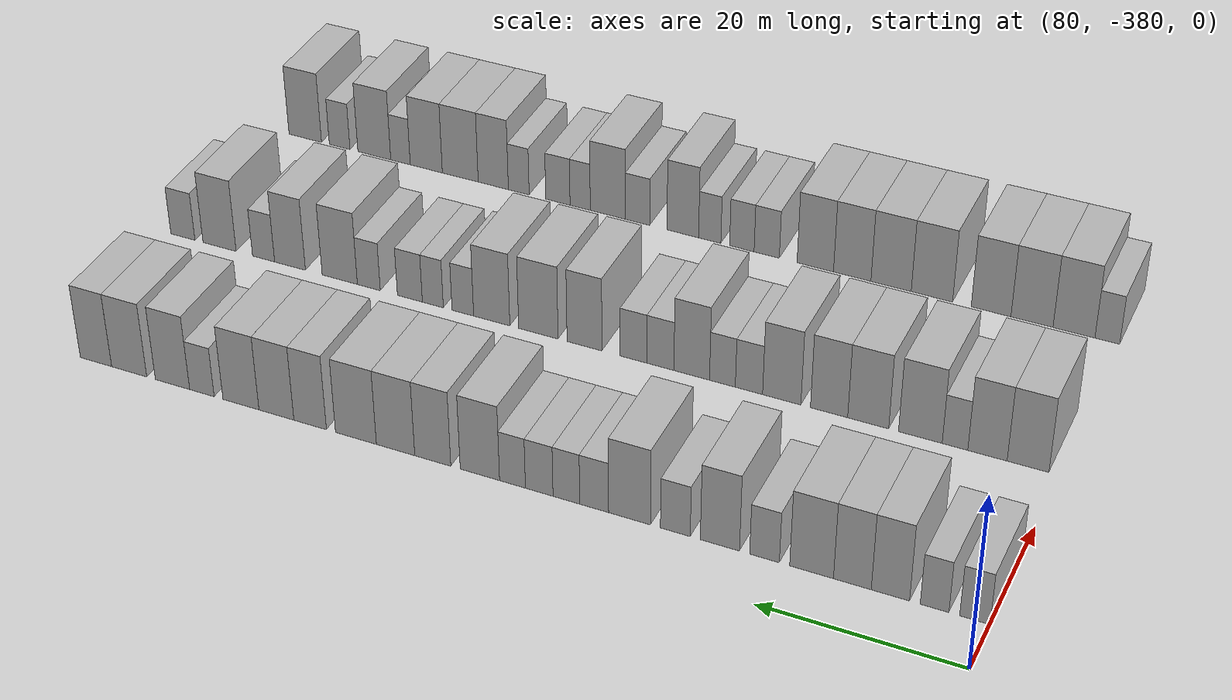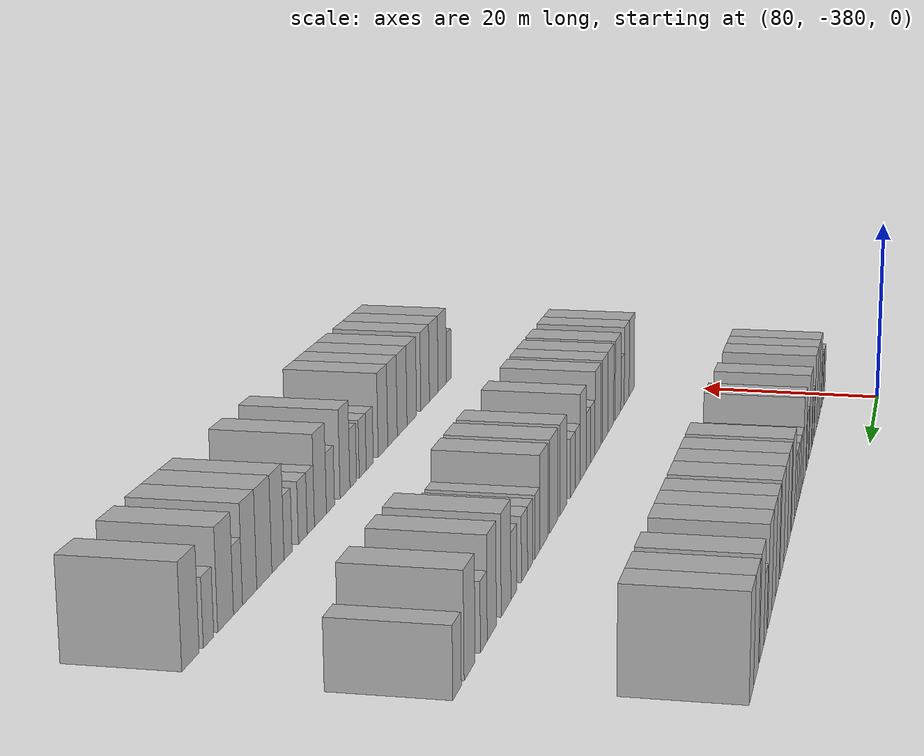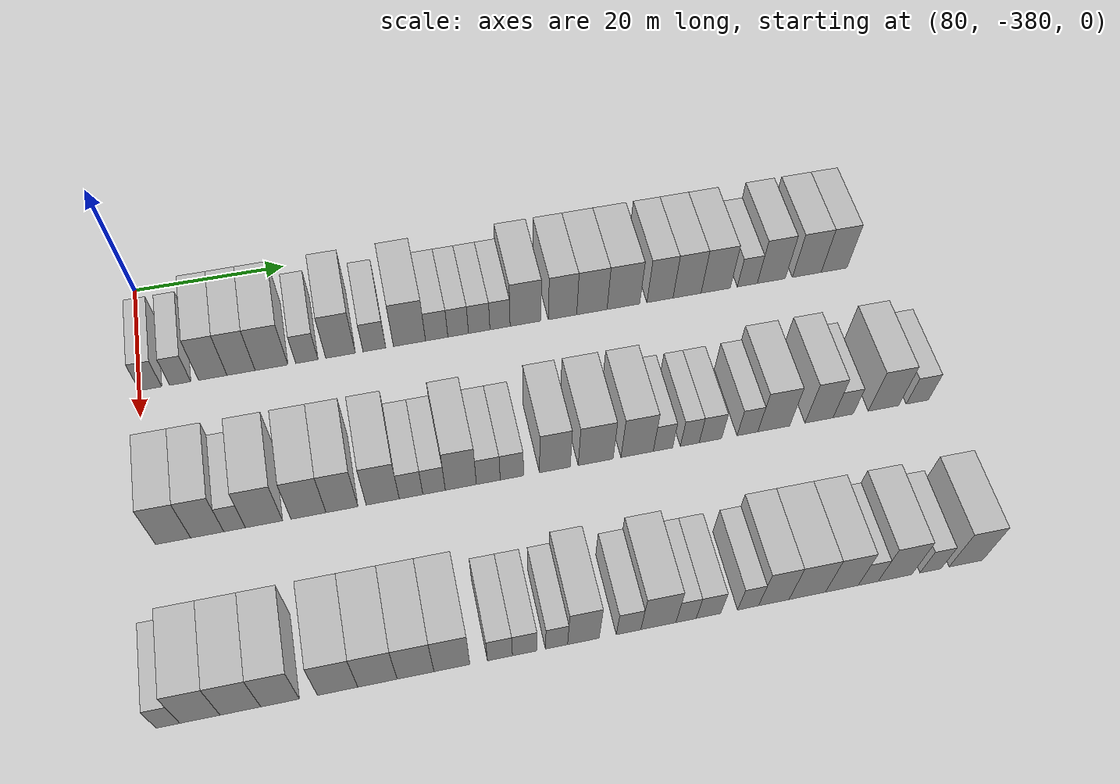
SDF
<sdf version="1.6">
 <world name="default">
  <model name="building_581">
   <static>1</static>
   <pose>91.0000 -378.5980 0 0.000000 0.000000 0.000000</pose>
   <link name="link">
    <pose>0 0 3.00 0 0 0</pose>
    <collision name="collision"><geometry><box><size>10.0000 2.8041 6.0000</size></box></geometry></collision>
    <visual name="visual">
     <cast_shadows>0</cast_shadows>
     <geometry><box><size>10.0000 2.8041 6.0000</size></box></geometry>
     <material>
      <script>
       <uri>model://HANNAS_wall/materials/scripts</uri>
       <uri>model://HANNAS_wall/materials/textures</uri>
       <name>vrc/HANNAS_wall</name>
      </script>
     </material>
    </visual>
   </link>
  </model>
  <model name="building_582">
   <static>1</static>
   <pose>91.0000 -374.8581 0 0.000000 0.000000 0.000000</pose>
   <link name="link">
    <pose>0 0 3.00 0 0 0</pose>
    <collision name="collision"><geometry><box><size>10.0000 2.6757 6.0000</size></box></geometry></collision>
    <visual name="visual">
     <cast_shadows>0</cast_shadows>
     <geometry><box><size>10.0000 2.6757 6.0000</size></box></geometry>
     <material>
      <script>
       <uri>model://HANNAS_wall/materials/scripts</uri>
       <uri>model://HANNAS_wall/materials/textures</uri>
       <name>vrc/HANNAS_wall</name>
      </script>
     </material>
    </visual>
   </link>
  </model>
  <model name="building_583">
   <static>1</static>
   <pose>91.0000 -370.7126 0 0.000000 0.000000 0.000000</pose>
   <link name="link">
    <pose>0 0 4.50 0 0 0</pose>
    <collision name="collision"><geometry><box><size>10.0000 3.6153 9.0000</size></box></geometry></collision>
    <visual name="visual">
     <cast_shadows>0</cast_shadows>
     <geometry><box><size>10.0000 3.6153 9.0000</size></box></geometry>
     <material>
      <script>
       <uri>model://HANNAS_wall/materials/scripts</uri>
       <uri>model://HANNAS_wall/materials/textures</uri>
       <name>vrc/HANNAS_wall</name>
      </script>
     </material>
    </visual>
   </link>
  </model>
  <model name="building_584">
   <static>1</static>
   <pose>91.0000 -367.1024 0 0.000000 0.000000 0.000000</pose>
   <link name="link">
    <pose>0 0 4.50 0 0 0</pose>
    <collision name="collision"><geometry><box><size>10.0000 3.6051 9.0000</size></box></geometry></collision>
    <visual name="visual">
     <cast_shadows>0</cast_shadows>
     <geometry><box><size>10.0000 3.6051 9.0000</size></box></geometry>
     <material>
      <script>
       <uri>model://HANNAS_wall/materials/scripts</uri>
       <uri>model://HANNAS_wall/materials/textures</uri>
       <name>vrc/HANNAS_wall</name>
      </script>
     </material>
    </visual>
   </link>
  </model>
  <model name="building_585">
   <static>1</static>
   <pose>91.0000 -363.1893 0 0.000000 0.000000 0.000000</pose>
   <link name="link">
    <pose>0 0 4.50 0 0 0</pose>
    <collision name="collision"><geometry><box><size>10.0000 4.2212 9.0000</size></box></geometry></collision>
    <visual name="visual">
     <cast_shadows>0</cast_shadows>
     <geometry><box><size>10.0000 4.2212 9.0000</size></box></geometry>
     <material>
      <script>
       <uri>model://HANNAS_wall/materials/scripts</uri>
       <uri>model://HANNAS_wall/materials/textures</uri>
       <name>vrc/HANNAS_wall</name>
      </script>
     </material>
    </visual>
   </link>
  </model>
  <model name="building_586">
   <static>1</static>
   <pose>91.0000 -358.6298 0 0.000000 0.000000 0.000000</pose>
   <link name="link">
    <pose>0 0 3.00 0 0 0</pose>
    <collision name="collision"><geometry><box><size>10.0000 2.8978 6.0000</size></box></geometry></collision>
    <visual name="visual">
     <cast_shadows>0</cast_shadows>
     <geometry><box><size>10.0000 2.8978 6.0000</size></box></geometry>
     <material>
      <script>
       <uri>model://HANNAS_wall/materials/scripts</uri>
       <uri>model://HANNAS_wall/materials/textures</uri>
       <name>vrc/HANNAS_wall</name>
      </script>
     </material>
    </visual>
   </link>
  </model>
  <model name="building_587">
   <static>1</static>
   <pose>91.0000 -354.2464 0 0.000000 0.000000 0.000000</pose>
   <link name="link">
    <pose>0 0 4.50 0 0 0</pose>
    <collision name="collision"><geometry><box><size>10.0000 3.8690 9.0000</size></box></geometry></collision>
    <visual name="visual">
     <cast_shadows>0</cast_shadows>
     <geometry><box><size>10.0000 3.8690 9.0000</size></box></geometry>
     <material>
      <script>
       <uri>model://HANNAS_wall/materials/scripts</uri>
       <uri>model://HANNAS_wall/materials/textures</uri>
       <name>vrc/HANNAS_wall</name>
      </script>
     </material>
    </visual>
   </link>
  </model>
  <model name="building_588">
   <static>1</static>
   <pose>91.0000 -349.8208 0 0.000000 0.000000 0.000000</pose>
   <link name="link">
    <pose>0 0 3.00 0 0 0</pose>
    <collision name="collision"><geometry><box><size>10.0000 2.9821 6.0000</size></box></geometry></collision>
    <visual name="visual">
     <cast_shadows>0</cast_shadows>
     <geometry><box><size>10.0000 2.9821 6.0000</size></box></geometry>
     <material>
      <script>
       <uri>model://HANNAS_wall/materials/scripts</uri>
       <uri>model://HANNAS_wall/materials/textures</uri>
       <name>vrc/HANNAS_wall</name>
      </script>
     </material>
    </visual>
   </link>
  </model>
  <model name="building_589">
   <static>1</static>
   <pose>91.0000 -345.2131 0 0.000000 0.000000 0.000000</pose>
   <link name="link">
    <pose>0 0 4.50 0 0 0</pose>
    <collision name="collision"><geometry><box><size>10.0000 4.2333 9.0000</size></box></geometry></collision>
    <visual name="visual">
     <cast_shadows>0</cast_shadows>
     <geometry><box><size>10.0000 4.2333 9.0000</size></box></geometry>
     <material>
      <script>
       <uri>model://HANNAS_wall/materials/scripts</uri>
       <uri>model://HANNAS_wall/materials/textures</uri>
       <name>vrc/HANNAS_wall</name>
      </script>
     </material>
    </visual>
   </link>
  </model>
  <model name="building_590">
   <static>1</static>
   <pose>91.0000 -341.6178 0 0.000000 0.000000 0.000000</pose>
   <link name="link">
    <pose>0 0 3.00 0 0 0</pose>
    <collision name="collision"><geometry><box><size>10.0000 2.9574 6.0000</size></box></geometry></collision>
    <visual name="visual">
     <cast_shadows>0</cast_shadows>
     <geometry><box><size>10.0000 2.9574 6.0000</size></box></geometry>
     <material>
      <script>
       <uri>model://HANNAS_wall/materials/scripts</uri>
       <uri>model://HANNAS_wall/materials/textures</uri>
       <name>vrc/HANNAS_wall</name>
      </script>
     </material>
    </visual>
   </link>
  </model>
  <model name="building_591">
   <static>1</static>
   <pose>91.0000 -338.7669 0 0.000000 0.000000 0.000000</pose>
   <link name="link">
    <pose>0 0 3.00 0 0 0</pose>
    <collision name="collision"><geometry><box><size>10.0000 2.7444 6.0000</size></box></geometry></collision>
    <visual name="visual">
     <cast_shadows>0</cast_shadows>
     <geometry><box><size>10.0000 2.7444 6.0000</size></box></geometry>
     <material>
      <script>
       <uri>model://HANNAS_wall/materials/scripts</uri>
       <uri>model://HANNAS_wall/materials/textures</uri>
       <name>vrc/HANNAS_wall</name>
      </script>
     </material>
    </visual>
   </link>
  </model>
  <model name="building_592">
   <static>1</static>
   <pose>91.0000 -335.9628 0 0.000000 0.000000 0.000000</pose>
   <link name="link">
    <pose>0 0 3.00 0 0 0</pose>
    <collision name="collision"><geometry><box><size>10.0000 2.8638 6.0000</size></box></geometry></collision>
    <visual name="visual">
     <cast_shadows>0</cast_shadows>
     <geometry><box><size>10.0000 2.8638 6.0000</size></box></geometry>
     <material>
      <script>
       <uri>model://HANNAS_wall/materials/scripts</uri>
       <uri>model://HANNAS_wall/materials/textures</uri>
       <name>vrc/HANNAS_wall</name>
      </script>
     </material>
    </visual>
   </link>
  </model>
  <model name="building_593">
   <static>1</static>
   <pose>91.0000 -333.1796 0 0.000000 0.000000 0.000000</pose>
   <link name="link">
    <pose>0 0 3.00 0 0 0</pose>
    <collision name="collision"><geometry><box><size>10.0000 2.7027 6.0000</size></box></geometry></collision>
    <visual name="visual">
     <cast_shadows>0</cast_shadows>
     <geometry><box><size>10.0000 2.7027 6.0000</size></box></geometry>
     <material>
      <script>
       <uri>model://HANNAS_wall/materials/scripts</uri>
       <uri>model://HANNAS_wall/materials/textures</uri>
       <name>vrc/HANNAS_wall</name>
      </script>
     </material>
    </visual>
   </link>
  </model>
  <model name="building_594">
   <static>1</static>
   <pose>91.0000 -329.7532 0 0.000000 0.000000 0.000000</pose>
   <link name="link">
    <pose>0 0 4.50 0 0 0</pose>
    <collision name="collision"><geometry><box><size>10.0000 4.1500 9.0000</size></box></geometry></collision>
    <visual name="visual">
     <cast_shadows>0</cast_shadows>
     <geometry><box><size>10.0000 4.1500 9.0000</size></box></geometry>
     <material>
      <script>
       <uri>model://HANNAS_wall/materials/scripts</uri>
       <uri>model://HANNAS_wall/materials/textures</uri>
       <name>vrc/HANNAS_wall</name>
      </script>
     </material>
    </visual>
   </link>
  </model>
  <model name="building_595">
   <static>1</static>
   <pose>91.0000 -324.7522 0 0.000000 0.000000 0.000000</pose>
   <link name="link">
    <pose>0 0 4.50 0 0 0</pose>
    <collision name="collision"><geometry><box><size>10.0000 3.8519 9.0000</size></box></geometry></collision>
    <visual name="visual">
     <cast_shadows>0</cast_shadows>
     <geometry><box><size>10.0000 3.8519 9.0000</size></box></geometry>
     <material>
      <script>
       <uri>model://HANNAS_wall/materials/scripts</uri>
       <uri>model://HANNAS_wall/materials/textures</uri>
       <name>vrc/HANNAS_wall</name>
      </script>
     </material>
    </visual>
   </link>
  </model>
  <model name="building_596">
   <static>1</static>
   <pose>91.0000 -320.7543 0 0.000000 0.000000 0.000000</pose>
   <link name="link">
    <pose>0 0 4.50 0 0 0</pose>
    <collision name="collision"><geometry><box><size>10.0000 4.1440 9.0000</size></box></geometry></collision>
    <visual name="visual">
     <cast_shadows>0</cast_shadows>
     <geometry><box><size>10.0000 4.1440 9.0000</size></box></geometry>
     <material>
      <script>
       <uri>model://HANNAS_wall/materials/scripts</uri>
       <uri>model://HANNAS_wall/materials/textures</uri>
       <name>vrc/HANNAS_wall</name>
      </script>
     </material>
    </visual>
   </link>
  </model>
  <model name="building_597">
   <static>1</static>
   <pose>91.0000 -316.4510 0 0.000000 0.000000 0.000000</pose>
   <link name="link">
    <pose>0 0 4.50 0 0 0</pose>
    <collision name="collision"><geometry><box><size>10.0000 4.4625 9.0000</size></box></geometry></collision>
    <visual name="visual">
     <cast_shadows>0</cast_shadows>
     <geometry><box><size>10.0000 4.4625 9.0000</size></box></geometry>
     <material>
      <script>
       <uri>model://HANNAS_wall/materials/scripts</uri>
       <uri>model://HANNAS_wall/materials/textures</uri>
       <name>vrc/HANNAS_wall</name>
      </script>
     </material>
    </visual>
   </link>
  </model>
  <model name="building_598">
   <static>1</static>
   <pose>91.0000 -311.4185 0 0.000000 0.000000 0.000000</pose>
   <link name="link">
    <pose>0 0 4.50 0 0 0</pose>
    <collision name="collision"><geometry><box><size>10.0000 3.6024 9.0000</size></box></geometry></collision>
    <visual name="visual">
     <cast_shadows>0</cast_shadows>
     <geometry><box><size>10.0000 3.6024 9.0000</size></box></geometry>
     <material>
      <script>
       <uri>model://HANNAS_wall/materials/scripts</uri>
       <uri>model://HANNAS_wall/materials/textures</uri>
       <name>vrc/HANNAS_wall</name>
      </script>
     </material>
    </visual>
   </link>
  </model>
  <model name="building_599">
   <static>1</static>
   <pose>91.0000 -307.6672 0 0.000000 0.000000 0.000000</pose>
   <link name="link">
    <pose>0 0 4.50 0 0 0</pose>
    <collision name="collision"><geometry><box><size>10.0000 3.9003 9.0000</size></box></geometry></collision>
    <visual name="visual">
     <cast_shadows>0</cast_shadows>
     <geometry><box><size>10.0000 3.9003 9.0000</size></box></geometry>
     <material>
      <script>
       <uri>model://HANNAS_wall/materials/scripts</uri>
       <uri>model://HANNAS_wall/materials/textures</uri>
       <name>vrc/HANNAS_wall</name>
      </script>
     </material>
    </visual>
   </link>
  </model>
  <model name="building_600">
   <static>1</static>
   <pose>91.0000 -303.6880 0 0.000000 0.000000 0.000000</pose>
   <link name="link">
    <pose>0 0 4.50 0 0 0</pose>
    <collision name="collision"><geometry><box><size>10.0000 4.0580 9.0000</size></box></geometry></collision>
    <visual name="visual">
     <cast_shadows>0</cast_shadows>
     <geometry><box><size>10.0000 4.0580 9.0000</size></box></geometry>
     <material>
      <script>
       <uri>model://HANNAS_wall/materials/scripts</uri>
       <uri>model://HANNAS_wall/materials/textures</uri>
       <name>vrc/HANNAS_wall</name>
      </script>
     </material>
    </visual>
   </link>
  </model>
  <model name="building_601">
   <static>1</static>
   <pose>91.0000 -299.2604 0 0.000000 0.000000 0.000000</pose>
   <link name="link">
    <pose>0 0 3.00 0 0 0</pose>
    <collision name="collision"><geometry><box><size>10.0000 2.7972 6.0000</size></box></geometry></collision>
    <visual name="visual">
     <cast_shadows>0</cast_shadows>
     <geometry><box><size>10.0000 2.7972 6.0000</size></box></geometry>
     <material>
      <script>
       <uri>model://HANNAS_wall/materials/scripts</uri>
       <uri>model://HANNAS_wall/materials/textures</uri>
       <name>vrc/HANNAS_wall</name>
      </script>
     </material>
    </visual>
   </link>
  </model>
  <model name="building_602">
   <static>1</static>
   <pose>91.0000 -295.8884 0 0.000000 0.000000 0.000000</pose>
   <link name="link">
    <pose>0 0 4.50 0 0 0</pose>
    <collision name="collision"><geometry><box><size>10.0000 3.9466 9.0000</size></box></geometry></collision>
    <visual name="visual">
     <cast_shadows>0</cast_shadows>
     <geometry><box><size>10.0000 3.9466 9.0000</size></box></geometry>
     <material>
      <script>
       <uri>model://HANNAS_wall/materials/scripts</uri>
       <uri>model://HANNAS_wall/materials/textures</uri>
       <name>vrc/HANNAS_wall</name>
      </script>
     </material>
    </visual>
   </link>
  </model>
  <model name="building_603">
   <static>1</static>
   <pose>91.0000 -290.8686 0 0.000000 0.000000 0.000000</pose>
   <link name="link">
    <pose>0 0 4.50 0 0 0</pose>
    <collision name="collision"><geometry><box><size>10.0000 4.0931 9.0000</size></box></geometry></collision>
    <visual name="visual">
     <cast_shadows>0</cast_shadows>
     <geometry><box><size>10.0000 4.0931 9.0000</size></box></geometry>
     <material>
      <script>
       <uri>model://HANNAS_wall/materials/scripts</uri>
       <uri>model://HANNAS_wall/materials/textures</uri>
       <name>vrc/HANNAS_wall</name>
      </script>
     </material>
    </visual>
   </link>
  </model>
  <model name="building_604">
   <static>1</static>
   <pose>91.0000 -286.9830 0 0.000000 0.000000 0.000000</pose>
   <link name="link">
    <pose>0 0 4.50 0 0 0</pose>
    <collision name="collision"><geometry><box><size>10.0000 3.6780 9.0000</size></box></geometry></collision>
    <visual name="visual">
     <cast_shadows>0</cast_shadows>
     <geometry><box><size>10.0000 3.6780 9.0000</size></box></geometry>
     <material>
      <script>
       <uri>model://HANNAS_wall/materials/scripts</uri>
       <uri>model://HANNAS_wall/materials/textures</uri>
       <name>vrc/HANNAS_wall</name>
      </script>
     </material>
    </visual>
   </link>
  </model>
  <model name="building_771">
   <static>1</static>
   <pose>113.0000 -376.9429 0 0.000000 0.000000 0.000000</pose>
   <link name="link">
    <pose>0 0 4.50 0 0 0</pose>
    <collision name="collision"><geometry><box><size>10.0000 4.1141 9.0000</size></box></geometry></collision>
    <visual name="visual">
     <cast_shadows>0</cast_shadows>
     <geometry><box><size>10.0000 4.1141 9.0000</size></box></geometry>
     <material>
      <script>
       <uri>model://HANNAS_wall/materials/scripts</uri>
       <uri>model://HANNAS_wall/materials/textures</uri>
       <name>vrc/HANNAS_wall</name>
      </script>
     </material>
    </visual>
   </link>
  </model>
  <model name="building_772">
   <static>1</static>
   <pose>113.0000 -372.9311 0 0.000000 0.000000 0.000000</pose>
   <link name="link">
    <pose>0 0 4.50 0 0 0</pose>
    <collision name="collision"><geometry><box><size>10.0000 3.9096 9.0000</size></box></geometry></collision>
    <visual name="visual">
     <cast_shadows>0</cast_shadows>
     <geometry><box><size>10.0000 3.9096 9.0000</size></box></geometry>
     <material>
      <script>
       <uri>model://HANNAS_wall/materials/scripts</uri>
       <uri>model://HANNAS_wall/materials/textures</uri>
       <name>vrc/HANNAS_wall</name>
      </script>
     </material>
    </visual>
   </link>
  </model>
  <model name="building_773">
   <static>1</static>
   <pose>113.0000 -369.6929 0 0.000000 0.000000 0.000000</pose>
   <link name="link">
    <pose>0 0 3.00 0 0 0</pose>
    <collision name="collision"><geometry><box><size>10.0000 2.5669 6.0000</size></box></geometry></collision>
    <visual name="visual">
     <cast_shadows>0</cast_shadows>
     <geometry><box><size>10.0000 2.5669 6.0000</size></box></geometry>
     <material>
      <script>
       <uri>model://HANNAS_wall/materials/scripts</uri>
       <uri>model://HANNAS_wall/materials/textures</uri>
       <name>vrc/HANNAS_wall</name>
      </script>
     </material>
    </visual>
   </link>
  </model>
  <model name="building_774">
   <static>1</static>
   <pose>113.0000 -366.2006 0 0.000000 0.000000 0.000000</pose>
   <link name="link">
    <pose>0 0 4.50 0 0 0</pose>
    <collision name="collision"><geometry><box><size>10.0000 4.4177 9.0000</size></box></geometry></collision>
    <visual name="visual">
     <cast_shadows>0</cast_shadows>
     <geometry><box><size>10.0000 4.4177 9.0000</size></box></geometry>
     <material>
      <script>
       <uri>model://HANNAS_wall/materials/scripts</uri>
       <uri>model://HANNAS_wall/materials/textures</uri>
       <name>vrc/HANNAS_wall</name>
      </script>
     </material>
    </visual>
   </link>
  </model>
  <model name="building_775">
   <static>1</static>
   <pose>113.0000 -360.8879 0 0.000000 0.000000 0.000000</pose>
   <link name="link">
    <pose>0 0 4.50 0 0 0</pose>
    <collision name="collision"><geometry><box><size>10.0000 4.2077 9.0000</size></box></geometry></collision>
    <visual name="visual">
     <cast_shadows>0</cast_shadows>
     <geometry><box><size>10.0000 4.2077 9.0000</size></box></geometry>
     <material>
      <script>
       <uri>model://HANNAS_wall/materials/scripts</uri>
       <uri>model://HANNAS_wall/materials/textures</uri>
       <name>vrc/HANNAS_wall</name>
      </script>
     </material>
    </visual>
   </link>
  </model>
  <model name="building_776">
   <static>1</static>
   <pose>113.0000 -356.8549 0 0.000000 0.000000 0.000000</pose>
   <link name="link">
    <pose>0 0 4.50 0 0 0</pose>
    <collision name="collision"><geometry><box><size>10.0000 3.8584 9.0000</size></box></geometry></collision>
    <visual name="visual">
     <cast_shadows>0</cast_shadows>
     <geometry><box><size>10.0000 3.8584 9.0000</size></box></geometry>
     <material>
      <script>
       <uri>model://HANNAS_wall/materials/scripts</uri>
       <uri>model://HANNAS_wall/materials/textures</uri>
       <name>vrc/HANNAS_wall</name>
      </script>
     </material>
    </visual>
   </link>
  </model>
  <model name="building_777">
   <static>1</static>
   <pose>113.0000 -351.9163 0 0.000000 0.000000 0.000000</pose>
   <link name="link">
    <pose>0 0 4.50 0 0 0</pose>
    <collision name="collision"><geometry><box><size>10.0000 4.0187 9.0000</size></box></geometry></collision>
    <visual name="visual">
     <cast_shadows>0</cast_shadows>
     <geometry><box><size>10.0000 4.0187 9.0000</size></box></geometry>
     <material>
      <script>
       <uri>model://HANNAS_wall/materials/scripts</uri>
       <uri>model://HANNAS_wall/materials/textures</uri>
       <name>vrc/HANNAS_wall</name>
      </script>
     </material>
    </visual>
   </link>
  </model>
  <model name="building_778">
   <static>1</static>
   <pose>113.0000 -348.4629 0 0.000000 0.000000 0.000000</pose>
   <link name="link">
    <pose>0 0 3.00 0 0 0</pose>
    <collision name="collision"><geometry><box><size>10.0000 2.8881 6.0000</size></box></geometry></collision>
    <visual name="visual">
     <cast_shadows>0</cast_shadows>
     <geometry><box><size>10.0000 2.8881 6.0000</size></box></geometry>
     <material>
      <script>
       <uri>model://HANNAS_wall/materials/scripts</uri>
       <uri>model://HANNAS_wall/materials/textures</uri>
       <name>vrc/HANNAS_wall</name>
      </script>
     </material>
    </visual>
   </link>
  </model>
  <model name="building_779">
   <static>1</static>
   <pose>113.0000 -345.6437 0 0.000000 0.000000 0.000000</pose>
   <link name="link">
    <pose>0 0 3.00 0 0 0</pose>
    <collision name="collision"><geometry><box><size>10.0000 2.7503 6.0000</size></box></geometry></collision>
    <visual name="visual">
     <cast_shadows>0</cast_shadows>
     <geometry><box><size>10.0000 2.7503 6.0000</size></box></geometry>
     <material>
      <script>
       <uri>model://HANNAS_wall/materials/scripts</uri>
       <uri>model://HANNAS_wall/materials/textures</uri>
       <name>vrc/HANNAS_wall</name>
      </script>
     </material>
    </visual>
   </link>
  </model>
  <model name="building_780">
   <static>1</static>
   <pose>113.0000 -342.3522 0 0.000000 0.000000 0.000000</pose>
   <link name="link">
    <pose>0 0 4.50 0 0 0</pose>
    <collision name="collision"><geometry><box><size>10.0000 3.8326 9.0000</size></box></geometry></collision>
    <visual name="visual">
     <cast_shadows>0</cast_shadows>
     <geometry><box><size>10.0000 3.8326 9.0000</size></box></geometry>
     <material>
      <script>
       <uri>model://HANNAS_wall/materials/scripts</uri>
       <uri>model://HANNAS_wall/materials/textures</uri>
       <name>vrc/HANNAS_wall</name>
      </script>
     </material>
    </visual>
   </link>
  </model>
  <model name="building_781">
   <static>1</static>
   <pose>113.0000 -338.9600 0 0.000000 0.000000 0.000000</pose>
   <link name="link">
    <pose>0 0 3.00 0 0 0</pose>
    <collision name="collision"><geometry><box><size>10.0000 2.9519 6.0000</size></box></geometry></collision>
    <visual name="visual">
     <cast_shadows>0</cast_shadows>
     <geometry><box><size>10.0000 2.9519 6.0000</size></box></geometry>
     <material>
      <script>
       <uri>model://HANNAS_wall/materials/scripts</uri>
       <uri>model://HANNAS_wall/materials/textures</uri>
       <name>vrc/HANNAS_wall</name>
      </script>
     </material>
    </visual>
   </link>
  </model>
  <model name="building_782">
   <static>1</static>
   <pose>113.0000 -336.0370 0 0.000000 0.000000 0.000000</pose>
   <link name="link">
    <pose>0 0 3.00 0 0 0</pose>
    <collision name="collision"><geometry><box><size>10.0000 2.8941 6.0000</size></box></geometry></collision>
    <visual name="visual">
     <cast_shadows>0</cast_shadows>
     <geometry><box><size>10.0000 2.8941 6.0000</size></box></geometry>
     <material>
      <script>
       <uri>model://HANNAS_wall/materials/scripts</uri>
       <uri>model://HANNAS_wall/materials/textures</uri>
       <name>vrc/HANNAS_wall</name>
      </script>
     </material>
    </visual>
   </link>
  </model>
  <model name="building_783">
   <static>1</static>
   <pose>113.0000 -330.6582 0 0.000000 0.000000 0.000000</pose>
   <link name="link">
    <pose>0 0 4.50 0 0 0</pose>
    <collision name="collision"><geometry><box><size>10.0000 3.8635 9.0000</size></box></geometry></collision>
    <visual name="visual">
     <cast_shadows>0</cast_shadows>
     <geometry><box><size>10.0000 3.8635 9.0000</size></box></geometry>
     <material>
      <script>
       <uri>model://HANNAS_wall/materials/scripts</uri>
       <uri>model://HANNAS_wall/materials/textures</uri>
       <name>vrc/HANNAS_wall</name>
      </script>
     </material>
    </visual>
   </link>
  </model>
  <model name="building_784">
   <static>1</static>
   <pose>113.0000 -325.5207 0 0.000000 0.000000 0.000000</pose>
   <link name="link">
    <pose>0 0 4.50 0 0 0</pose>
    <collision name="collision"><geometry><box><size>10.0000 4.4114 9.0000</size></box></geometry></collision>
    <visual name="visual">
     <cast_shadows>0</cast_shadows>
     <geometry><box><size>10.0000 4.4114 9.0000</size></box></geometry>
     <material>
      <script>
       <uri>model://HANNAS_wall/materials/scripts</uri>
       <uri>model://HANNAS_wall/materials/textures</uri>
       <name>vrc/HANNAS_wall</name>
      </script>
     </material>
    </visual>
   </link>
  </model>
  <model name="building_785">
   <static>1</static>
   <pose>113.0000 -320.2584 0 0.000000 0.000000 0.000000</pose>
   <link name="link">
    <pose>0 0 4.50 0 0 0</pose>
    <collision name="collision"><geometry><box><size>10.0000 4.1131 9.0000</size></box></geometry></collision>
    <visual name="visual">
     <cast_shadows>0</cast_shadows>
     <geometry><box><size>10.0000 4.1131 9.0000</size></box></geometry>
     <material>
      <script>
       <uri>model://HANNAS_wall/materials/scripts</uri>
       <uri>model://HANNAS_wall/materials/textures</uri>
       <name>vrc/HANNAS_wall</name>
      </script>
     </material>
    </visual>
   </link>
  </model>
  <model name="building_786">
   <static>1</static>
   <pose>113.0000 -316.9638 0 0.000000 0.000000 0.000000</pose>
   <link name="link">
    <pose>0 0 3.00 0 0 0</pose>
    <collision name="collision"><geometry><box><size>10.0000 2.4762 6.0000</size></box></geometry></collision>
    <visual name="visual">
     <cast_shadows>0</cast_shadows>
     <geometry><box><size>10.0000 2.4762 6.0000</size></box></geometry>
     <material>
      <script>
       <uri>model://HANNAS_wall/materials/scripts</uri>
       <uri>model://HANNAS_wall/materials/textures</uri>
       <name>vrc/HANNAS_wall</name>
      </script>
     </material>
    </visual>
   </link>
  </model>
  <model name="building_787">
   <static>1</static>
   <pose>113.0000 -313.5150 0 0.000000 0.000000 0.000000</pose>
   <link name="link">
    <pose>0 0 3.00 0 0 0</pose>
    <collision name="collision"><geometry><box><size>10.0000 2.4213 6.0000</size></box></geometry></collision>
    <visual name="visual">
     <cast_shadows>0</cast_shadows>
     <geometry><box><size>10.0000 2.4213 6.0000</size></box></geometry>
     <material>
      <script>
       <uri>model://HANNAS_wall/materials/scripts</uri>
       <uri>model://HANNAS_wall/materials/textures</uri>
       <name>vrc/HANNAS_wall</name>
      </script>
     </material>
    </visual>
   </link>
  </model>
  <model name="building_788">
   <static>1</static>
   <pose>113.0000 -310.8564 0 0.000000 0.000000 0.000000</pose>
   <link name="link">
    <pose>0 0 3.00 0 0 0</pose>
    <collision name="collision"><geometry><box><size>10.0000 2.8959 6.0000</size></box></geometry></collision>
    <visual name="visual">
     <cast_shadows>0</cast_shadows>
     <geometry><box><size>10.0000 2.8959 6.0000</size></box></geometry>
     <material>
      <script>
       <uri>model://HANNAS_wall/materials/scripts</uri>
       <uri>model://HANNAS_wall/materials/textures</uri>
       <name>vrc/HANNAS_wall</name>
      </script>
     </material>
    </visual>
   </link>
  </model>
  <model name="building_789">
   <static>1</static>
   <pose>113.0000 -306.0617 0 0.000000 0.000000 0.000000</pose>
   <link name="link">
    <pose>0 0 3.00 0 0 0</pose>
    <collision name="collision"><geometry><box><size>10.0000 2.6936 6.0000</size></box></geometry></collision>
    <visual name="visual">
     <cast_shadows>0</cast_shadows>
     <geometry><box><size>10.0000 2.6936 6.0000</size></box></geometry>
     <material>
      <script>
       <uri>model://HANNAS_wall/materials/scripts</uri>
       <uri>model://HANNAS_wall/materials/textures</uri>
       <name>vrc/HANNAS_wall</name>
      </script>
     </material>
    </visual>
   </link>
  </model>
  <model name="building_790">
   <static>1</static>
   <pose>113.0000 -302.6275 0 0.000000 0.000000 0.000000</pose>
   <link name="link">
    <pose>0 0 4.50 0 0 0</pose>
    <collision name="collision"><geometry><box><size>10.0000 4.1747 9.0000</size></box></geometry></collision>
    <visual name="visual">
     <cast_shadows>0</cast_shadows>
     <geometry><box><size>10.0000 4.1747 9.0000</size></box></geometry>
     <material>
      <script>
       <uri>model://HANNAS_wall/materials/scripts</uri>
       <uri>model://HANNAS_wall/materials/textures</uri>
       <name>vrc/HANNAS_wall</name>
      </script>
     </material>
    </visual>
   </link>
  </model>
  <model name="building_791">
   <static>1</static>
   <pose>113.0000 -296.6889 0 0.000000 0.000000 0.000000</pose>
   <link name="link">
    <pose>0 0 4.50 0 0 0</pose>
    <collision name="collision"><geometry><box><size>10.0000 3.7024 9.0000</size></box></geometry></collision>
    <visual name="visual">
     <cast_shadows>0</cast_shadows>
     <geometry><box><size>10.0000 3.7024 9.0000</size></box></geometry>
     <material>
      <script>
       <uri>model://HANNAS_wall/materials/scripts</uri>
       <uri>model://HANNAS_wall/materials/textures</uri>
       <name>vrc/HANNAS_wall</name>
      </script>
     </material>
    </visual>
   </link>
  </model>
  <model name="building_792">
   <static>1</static>
   <pose>113.0000 -293.5017 0 0.000000 0.000000 0.000000</pose>
   <link name="link">
    <pose>0 0 3.00 0 0 0</pose>
    <collision name="collision"><geometry><box><size>10.0000 2.6722 6.0000</size></box></geometry></collision>
    <visual name="visual">
     <cast_shadows>0</cast_shadows>
     <geometry><box><size>10.0000 2.6722 6.0000</size></box></geometry>
     <material>
      <script>
       <uri>model://HANNAS_wall/materials/scripts</uri>
       <uri>model://HANNAS_wall/materials/textures</uri>
       <name>vrc/HANNAS_wall</name>
      </script>
     </material>
    </visual>
   </link>
  </model>
  <model name="building_793">
   <static>1</static>
   <pose>113.0000 -288.1325 0 0.000000 0.000000 0.000000</pose>
   <link name="link">
    <pose>0 0 4.50 0 0 0</pose>
    <collision name="collision"><geometry><box><size>10.0000 4.0661 9.0000</size></box></geometry></collision>
    <visual name="visual">
     <cast_shadows>0</cast_shadows>
     <geometry><box><size>10.0000 4.0661 9.0000</size></box></geometry>
     <material>
      <script>
       <uri>model://HANNAS_wall/materials/scripts</uri>
       <uri>model://HANNAS_wall/materials/textures</uri>
       <name>vrc/HANNAS_wall</name>
      </script>
     </material>
    </visual>
   </link>
  </model>
  <model name="building_794">
   <static>1</static>
   <pose>113.0000 -283.6100 0 0.000000 0.000000 0.000000</pose>
   <link name="link">
    <pose>0 0 3.00 0 0 0</pose>
    <collision name="collision"><geometry><box><size>10.0000 2.9788 6.0000</size></box></geometry></collision>
    <visual name="visual">
     <cast_shadows>0</cast_shadows>
     <geometry><box><size>10.0000 2.9788 6.0000</size></box></geometry>
     <material>
      <script>
       <uri>model://HANNAS_wall/materials/scripts</uri>
       <uri>model://HANNAS_wall/materials/textures</uri>
       <name>vrc/HANNAS_wall</name>
      </script>
     </material>
    </visual>
   </link>
  </model>
  <model name="building_960">
   <static>1</static>
   <pose>135.0000 -378.7171 0 0.000000 0.000000 0.000000</pose>
   <link name="link">
    <pose>0 0 3.00 0 0 0</pose>
    <collision name="collision"><geometry><box><size>10.0000 2.5658 6.0000</size></box></geometry></collision>
    <visual name="visual">
     <cast_shadows>0</cast_shadows>
     <geometry><box><size>10.0000 2.5658 6.0000</size></box></geometry>
     <material>
      <script>
       <uri>model://HANNAS_wall/materials/scripts</uri>
       <uri>model://HANNAS_wall/materials/textures</uri>
       <name>vrc/HANNAS_wall</name>
      </script>
     </material>
    </visual>
   </link>
  </model>
  <model name="building_961">
   <static>1</static>
   <pose>135.0000 -375.2453 0 0.000000 0.000000 0.000000</pose>
   <link name="link">
    <pose>0 0 4.50 0 0 0</pose>
    <collision name="collision"><geometry><box><size>10.0000 4.3778 9.0000</size></box></geometry></collision>
    <visual name="visual">
     <cast_shadows>0</cast_shadows>
     <geometry><box><size>10.0000 4.3778 9.0000</size></box></geometry>
     <material>
      <script>
       <uri>model://HANNAS_wall/materials/scripts</uri>
       <uri>model://HANNAS_wall/materials/textures</uri>
       <name>vrc/HANNAS_wall</name>
      </script>
     </material>
    </visual>
   </link>
  </model>
  <model name="building_962">
   <static>1</static>
   <pose>135.0000 -370.8348 0 0.000000 0.000000 0.000000</pose>
   <link name="link">
    <pose>0 0 4.50 0 0 0</pose>
    <collision name="collision"><geometry><box><size>10.0000 4.4433 9.0000</size></box></geometry></collision>
    <visual name="visual">
     <cast_shadows>0</cast_shadows>
     <geometry><box><size>10.0000 4.4433 9.0000</size></box></geometry>
     <material>
      <script>
       <uri>model://HANNAS_wall/materials/scripts</uri>
       <uri>model://HANNAS_wall/materials/textures</uri>
       <name>vrc/HANNAS_wall</name>
      </script>
     </material>
    </visual>
   </link>
  </model>
  <model name="building_963">
   <static>1</static>
   <pose>135.0000 -366.4929 0 0.000000 0.000000 0.000000</pose>
   <link name="link">
    <pose>0 0 4.50 0 0 0</pose>
    <collision name="collision"><geometry><box><size>10.0000 4.2406 9.0000</size></box></geometry></collision>
    <visual name="visual">
     <cast_shadows>0</cast_shadows>
     <geometry><box><size>10.0000 4.2406 9.0000</size></box></geometry>
     <material>
      <script>
       <uri>model://HANNAS_wall/materials/scripts</uri>
       <uri>model://HANNAS_wall/materials/textures</uri>
       <name>vrc/HANNAS_wall</name>
      </script>
     </material>
    </visual>
   </link>
  </model>
  <model name="building_964">
   <static>1</static>
   <pose>135.0000 -360.1298 0 0.000000 0.000000 0.000000</pose>
   <link name="link">
    <pose>0 0 4.50 0 0 0</pose>
    <collision name="collision"><geometry><box><size>10.0000 4.4856 9.0000</size></box></geometry></collision>
    <visual name="visual">
     <cast_shadows>0</cast_shadows>
     <geometry><box><size>10.0000 4.4856 9.0000</size></box></geometry>
     <material>
      <script>
       <uri>model://HANNAS_wall/materials/scripts</uri>
       <uri>model://HANNAS_wall/materials/textures</uri>
       <name>vrc/HANNAS_wall</name>
      </script>
     </material>
    </visual>
   </link>
  </model>
  <model name="building_965">
   <static>1</static>
   <pose>135.0000 -355.6821 0 0.000000 0.000000 0.000000</pose>
   <link name="link">
    <pose>0 0 4.50 0 0 0</pose>
    <collision name="collision"><geometry><box><size>10.0000 4.4096 9.0000</size></box></geometry></collision>
    <visual name="visual">
     <cast_shadows>0</cast_shadows>
     <geometry><box><size>10.0000 4.4096 9.0000</size></box></geometry>
     <material>
      <script>
       <uri>model://HANNAS_wall/materials/scripts</uri>
       <uri>model://HANNAS_wall/materials/textures</uri>
       <name>vrc/HANNAS_wall</name>
      </script>
     </material>
    </visual>
   </link>
  </model>
  <model name="building_966">
   <static>1</static>
   <pose>135.0000 -351.4044 0 0.000000 0.000000 0.000000</pose>
   <link name="link">
    <pose>0 0 4.50 0 0 0</pose>
    <collision name="collision"><geometry><box><size>10.0000 4.1459 9.0000</size></box></geometry></collision>
    <visual name="visual">
     <cast_shadows>0</cast_shadows>
     <geometry><box><size>10.0000 4.1459 9.0000</size></box></geometry>
     <material>
      <script>
       <uri>model://HANNAS_wall/materials/scripts</uri>
       <uri>model://HANNAS_wall/materials/textures</uri>
       <name>vrc/HANNAS_wall</name>
      </script>
     </material>
    </visual>
   </link>
  </model>
  <model name="building_967">
   <static>1</static>
   <pose>135.0000 -347.2983 0 0.000000 0.000000 0.000000</pose>
   <link name="link">
    <pose>0 0 4.50 0 0 0</pose>
    <collision name="collision"><geometry><box><size>10.0000 4.0662 9.0000</size></box></geometry></collision>
    <visual name="visual">
     <cast_shadows>0</cast_shadows>
     <geometry><box><size>10.0000 4.0662 9.0000</size></box></geometry>
     <material>
      <script>
       <uri>model://HANNAS_wall/materials/scripts</uri>
       <uri>model://HANNAS_wall/materials/textures</uri>
       <name>vrc/HANNAS_wall</name>
      </script>
     </material>
    </visual>
   </link>
  </model>
  <model name="building_968">
   <static>1</static>
   <pose>135.0000 -341.8361 0 0.000000 0.000000 0.000000</pose>
   <link name="link">
    <pose>0 0 3.00 0 0 0</pose>
    <collision name="collision"><geometry><box><size>10.0000 2.8582 6.0000</size></box></geometry></collision>
    <visual name="visual">
     <cast_shadows>0</cast_shadows>
     <geometry><box><size>10.0000 2.8582 6.0000</size></box></geometry>
     <material>
      <script>
       <uri>model://HANNAS_wall/materials/scripts</uri>
       <uri>model://HANNAS_wall/materials/textures</uri>
       <name>vrc/HANNAS_wall</name>
      </script>
     </material>
    </visual>
   </link>
  </model>
  <model name="building_969">
   <static>1</static>
   <pose>135.0000 -339.0107 0 0.000000 0.000000 0.000000</pose>
   <link name="link">
    <pose>0 0 3.00 0 0 0</pose>
    <collision name="collision"><geometry><box><size>10.0000 2.7925 6.0000</size></box></geometry></collision>
    <visual name="visual">
     <cast_shadows>0</cast_shadows>
     <geometry><box><size>10.0000 2.7925 6.0000</size></box></geometry>
     <material>
      <script>
       <uri>model://HANNAS_wall/materials/scripts</uri>
       <uri>model://HANNAS_wall/materials/textures</uri>
       <name>vrc/HANNAS_wall</name>
      </script>
     </material>
    </visual>
   </link>
  </model>
  <model name="building_970">
   <static>1</static>
   <pose>135.0000 -335.3323 0 0.000000 0.000000 0.000000</pose>
   <link name="link">
    <pose>0 0 3.00 0 0 0</pose>
    <collision name="collision"><geometry><box><size>10.0000 2.5644 6.0000</size></box></geometry></collision>
    <visual name="visual">
     <cast_shadows>0</cast_shadows>
     <geometry><box><size>10.0000 2.5644 6.0000</size></box></geometry>
     <material>
      <script>
       <uri>model://HANNAS_wall/materials/scripts</uri>
       <uri>model://HANNAS_wall/materials/textures</uri>
       <name>vrc/HANNAS_wall</name>
      </script>
     </material>
    </visual>
   </link>
  </model>
  <model name="building_971">
   <static>1</static>
   <pose>135.0000 -332.2176 0 0.000000 0.000000 0.000000</pose>
   <link name="link">
    <pose>0 0 4.50 0 0 0</pose>
    <collision name="collision"><geometry><box><size>10.0000 3.6650 9.0000</size></box></geometry></collision>
    <visual name="visual">
     <cast_shadows>0</cast_shadows>
     <geometry><box><size>10.0000 3.6650 9.0000</size></box></geometry>
     <material>
      <script>
       <uri>model://HANNAS_wall/materials/scripts</uri>
       <uri>model://HANNAS_wall/materials/textures</uri>
       <name>vrc/HANNAS_wall</name>
      </script>
     </material>
    </visual>
   </link>
  </model>
  <model name="building_972">
   <static>1</static>
   <pose>135.0000 -326.9472 0 0.000000 0.000000 0.000000</pose>
   <link name="link">
    <pose>0 0 3.00 0 0 0</pose>
    <collision name="collision"><geometry><box><size>10.0000 2.8758 6.0000</size></box></geometry></collision>
    <visual name="visual">
     <cast_shadows>0</cast_shadows>
     <geometry><box><size>10.0000 2.8758 6.0000</size></box></geometry>
     <material>
      <script>
       <uri>model://HANNAS_wall/materials/scripts</uri>
       <uri>model://HANNAS_wall/materials/textures</uri>
       <name>vrc/HANNAS_wall</name>
      </script>
     </material>
    </visual>
   </link>
  </model>
  <model name="building_973">
   <static>1</static>
   <pose>135.0000 -323.4429 0 0.000000 0.000000 0.000000</pose>
   <link name="link">
    <pose>0 0 4.50 0 0 0</pose>
    <collision name="collision"><geometry><box><size>10.0000 4.1328 9.0000</size></box></geometry></collision>
    <visual name="visual">
     <cast_shadows>0</cast_shadows>
     <geometry><box><size>10.0000 4.1328 9.0000</size></box></geometry>
     <material>
      <script>
       <uri>model://HANNAS_wall/materials/scripts</uri>
       <uri>model://HANNAS_wall/materials/textures</uri>
       <name>vrc/HANNAS_wall</name>
      </script>
     </material>
    </visual>
   </link>
  </model>
  <model name="building_974">
   <static>1</static>
   <pose>135.0000 -320.1735 0 0.000000 0.000000 0.000000</pose>
   <link name="link">
    <pose>0 0 3.00 0 0 0</pose>
    <collision name="collision"><geometry><box><size>10.0000 2.4060 6.0000</size></box></geometry></collision>
    <visual name="visual">
     <cast_shadows>0</cast_shadows>
     <geometry><box><size>10.0000 2.4060 6.0000</size></box></geometry>
     <material>
      <script>
       <uri>model://HANNAS_wall/materials/scripts</uri>
       <uri>model://HANNAS_wall/materials/textures</uri>
       <name>vrc/HANNAS_wall</name>
      </script>
     </material>
    </visual>
   </link>
  </model>
  <model name="building_975">
   <static>1</static>
   <pose>135.0000 -317.5162 0 0.000000 0.000000 0.000000</pose>
   <link name="link">
    <pose>0 0 3.00 0 0 0</pose>
    <collision name="collision"><geometry><box><size>10.0000 2.9086 6.0000</size></box></geometry></collision>
    <visual name="visual">
     <cast_shadows>0</cast_shadows>
     <geometry><box><size>10.0000 2.9086 6.0000</size></box></geometry>
     <material>
      <script>
       <uri>model://HANNAS_wall/materials/scripts</uri>
       <uri>model://HANNAS_wall/materials/textures</uri>
       <name>vrc/HANNAS_wall</name>
      </script>
     </material>
    </visual>
   </link>
  </model>
  <model name="building_976">
   <static>1</static>
   <pose>135.0000 -312.8030 0 0.000000 0.000000 0.000000</pose>
   <link name="link">
    <pose>0 0 3.00 0 0 0</pose>
    <collision name="collision"><geometry><box><size>10.0000 2.5178 6.0000</size></box></geometry></collision>
    <visual name="visual">
     <cast_shadows>0</cast_shadows>
     <geometry><box><size>10.0000 2.5178 6.0000</size></box></geometry>
     <material>
      <script>
       <uri>model://HANNAS_wall/materials/scripts</uri>
       <uri>model://HANNAS_wall/materials/textures</uri>
       <name>vrc/HANNAS_wall</name>
      </script>
     </material>
    </visual>
   </link>
  </model>
  <model name="building_977">
   <static>1</static>
   <pose>135.0000 -309.7037 0 0.000000 0.000000 0.000000</pose>
   <link name="link">
    <pose>0 0 4.50 0 0 0</pose>
    <collision name="collision"><geometry><box><size>10.0000 3.6806 9.0000</size></box></geometry></collision>
    <visual name="visual">
     <cast_shadows>0</cast_shadows>
     <geometry><box><size>10.0000 3.6806 9.0000</size></box></geometry>
     <material>
      <script>
       <uri>model://HANNAS_wall/materials/scripts</uri>
       <uri>model://HANNAS_wall/materials/textures</uri>
       <name>vrc/HANNAS_wall</name>
      </script>
     </material>
    </visual>
   </link>
  </model>
  <model name="building_978">
   <static>1</static>
   <pose>135.0000 -305.6569 0 0.000000 0.000000 0.000000</pose>
   <link name="link">
    <pose>0 0 4.50 0 0 0</pose>
    <collision name="collision"><geometry><box><size>10.0000 4.4131 9.0000</size></box></geometry></collision>
    <visual name="visual">
     <cast_shadows>0</cast_shadows>
     <geometry><box><size>10.0000 4.4131 9.0000</size></box></geometry>
     <material>
      <script>
       <uri>model://HANNAS_wall/materials/scripts</uri>
       <uri>model://HANNAS_wall/materials/textures</uri>
       <name>vrc/HANNAS_wall</name>
      </script>
     </material>
    </visual>
   </link>
  </model>
  <model name="building_979">
   <static>1</static>
   <pose>135.0000 -301.4554 0 0.000000 0.000000 0.000000</pose>
   <link name="link">
    <pose>0 0 4.50 0 0 0</pose>
    <collision name="collision"><geometry><box><size>10.0000 3.9899 9.0000</size></box></geometry></collision>
    <visual name="visual">
     <cast_shadows>0</cast_shadows>
     <geometry><box><size>10.0000 3.9899 9.0000</size></box></geometry>
     <material>
      <script>
       <uri>model://HANNAS_wall/materials/scripts</uri>
       <uri>model://HANNAS_wall/materials/textures</uri>
       <name>vrc/HANNAS_wall</name>
      </script>
     </material>
    </visual>
   </link>
  </model>
  <model name="building_980">
   <static>1</static>
   <pose>135.0000 -298.2407 0 0.000000 0.000000 0.000000</pose>
   <link name="link">
    <pose>0 0 3.00 0 0 0</pose>
    <collision name="collision"><geometry><box><size>10.0000 2.4395 6.0000</size></box></geometry></collision>
    <visual name="visual">
     <cast_shadows>0</cast_shadows>
     <geometry><box><size>10.0000 2.4395 6.0000</size></box></geometry>
     <material>
      <script>
       <uri>model://HANNAS_wall/materials/scripts</uri>
       <uri>model://HANNAS_wall/materials/textures</uri>
       <name>vrc/HANNAS_wall</name>
      </script>
     </material>
    </visual>
   </link>
  </model>
  <model name="building_981">
   <static>1</static>
   <pose>135.0000 -294.9490 0 0.000000 0.000000 0.000000</pose>
   <link name="link">
    <pose>0 0 4.50 0 0 0</pose>
    <collision name="collision"><geometry><box><size>10.0000 4.1438 9.0000</size></box></geometry></collision>
    <visual name="visual">
     <cast_shadows>0</cast_shadows>
     <geometry><box><size>10.0000 4.1438 9.0000</size></box></geometry>
     <material>
      <script>
       <uri>model://HANNAS_wall/materials/scripts</uri>
       <uri>model://HANNAS_wall/materials/textures</uri>
       <name>vrc/HANNAS_wall</name>
      </script>
     </material>
    </visual>
   </link>
  </model>
  <model name="building_982">
   <static>1</static>
   <pose>135.0000 -290.5621 0 0.000000 0.000000 0.000000</pose>
   <link name="link">
    <pose>0 0 3.00 0 0 0</pose>
    <collision name="collision"><geometry><box><size>10.0000 2.6301 6.0000</size></box></geometry></collision>
    <visual name="visual">
     <cast_shadows>0</cast_shadows>
     <geometry><box><size>10.0000 2.6301 6.0000</size></box></geometry>
     <material>
      <script>
       <uri>model://HANNAS_wall/materials/scripts</uri>
       <uri>model://HANNAS_wall/materials/textures</uri>
       <name>vrc/HANNAS_wall</name>
      </script>
     </material>
    </visual>
   </link>
  </model>
  <model name="building_983">
   <static>1</static>
   <pose>135.0000 -286.1613 0 0.000000 0.000000 0.000000</pose>
   <link name="link">
    <pose>0 0 4.50 0 0 0</pose>
    <collision name="collision"><geometry><box><size>10.0000 4.1716 9.0000</size></box></geometry></collision>
    <visual name="visual">
     <cast_shadows>0</cast_shadows>
     <geometry><box><size>10.0000 4.1716 9.0000</size></box></geometry>
     <material>
      <script>
       <uri>model://HANNAS_wall/materials/scripts</uri>
       <uri>model://HANNAS_wall/materials/textures</uri>
       <name>vrc/HANNAS_wall</name>
      </script>
     </material>
    </visual>
   </link>
  </model>
 </world>
</sdf>
